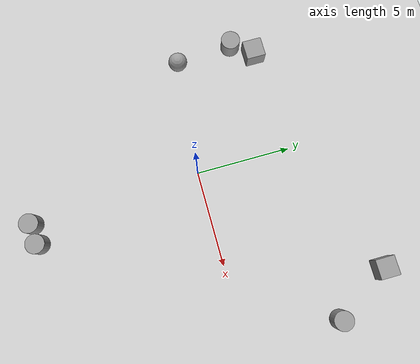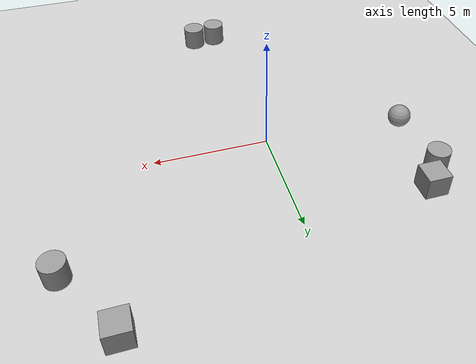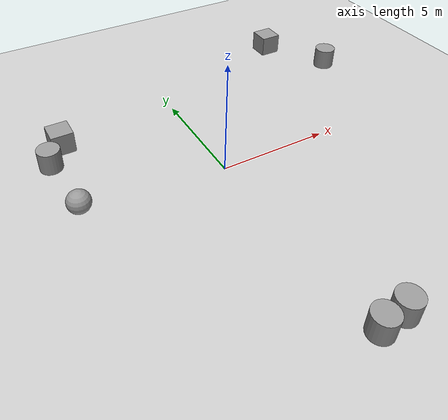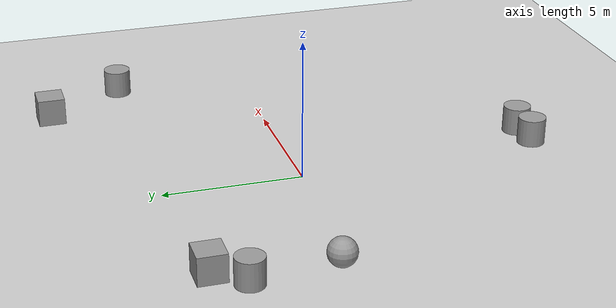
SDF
<sdf version="1.7">
 <world name="default">
  <light name="sun" type="directional">
   <pose>0 0 10 0 -0 0</pose>
   <diffuse>0.8 0.8 0.8 1</diffuse>
   <specular>0.2 0.2 0.2 1</specular>
   <attenuation>
    <range>1000</range>
    <constant>0.9</constant>
    <linear>0.01</linear>
    <quadratic>0.001</quadratic>
   </attenuation>
   <direction>-0.5 0.1 -0.9</direction>
   <spot><inner_angle>0</inner_angle><outer_angle>0</outer_angle><falloff>0</falloff></spot>
  </light>
  <model name="ground_plane">
   <static>1</static>
   <link name="link">
    <collision name="collision">
     <geometry><plane><normal>0 0 1</normal><size>100 100</size></plane></geometry>
     <surface><friction><ode><mu>100</mu><mu2>50</mu2></ode></friction></surface>
    </collision>
    <visual name="visual">
     <cast_shadows>0</cast_shadows>
     <geometry><plane><normal>0 0 1</normal><size>100 100</size></plane></geometry>
     <material>
      <script><uri>file://media/materials/scripts/gazebo.material</uri><name>Gazebo/Grey</name></script>
     </material>
    </visual>
   </link>
  </model>
  <gravity>0 0 -9.8</gravity>
  <magnetic_field>6e-06 2.3e-05 -4.2e-05</magnetic_field>
  <atmosphere type="adiabatic"/>
  <physics type="ode">
   <max_step_size>0.001</max_step_size>
   <real_time_factor>1</real_time_factor>
   <real_time_update_rate>1000</real_time_update_rate>
  </physics>
  <scene><ambient>0.4 0.4 0.4 1</ambient><background>0.7 0.7 0.7 1</background><shadows>1</shadows></scene>
  <spherical_coordinates>
   <surface_model>EARTH_WGS84</surface_model>
   <latitude_deg>0</latitude_deg>
   <longitude_deg>0</longitude_deg>
   <elevation>0</elevation>
   <heading_deg>0</heading_deg>
  </spherical_coordinates>
  <model name="unit_box">
   <pose>-5.56853 4.66268 0.5 0 -0 0</pose>
   <link name="link">
    <inertial>
     <mass>1</mass>
     <inertia>
      <ixx>0.166667</ixx>
      <ixy>0</ixy>
      <ixz>0</ixz>
      <iyy>0.166667</iyy>
      <iyz>0</iyz>
      <izz>0.166667</izz>
     </inertia>
    </inertial>
    <collision name="collision"><geometry><box><size>1 1 1</size></box></geometry></collision>
    <visual name="visual">
     <geometry><box><size>1 1 1</size></box></geometry>
     <material>
      <script><name>Gazebo/Grey</name><uri>file://media/materials/scripts/gazebo.material</uri></script>
     </material>
    </visual>
   </link>
  </model>
  <model name="unit_cylinder">
   <pose>-6.35113 3.58978 0.499992 -3e-06 -4e-06 -0</pose>
   <link name="link">
    <inertial>
     <mass>1</mass>
     <inertia><ixx>0.145833</ixx><ixy>0</ixy><ixz>0</ixz><iyy>0.145833</iyy><iyz>0</iyz><izz>0.125</izz></inertia>
    </inertial>
    <collision name="collision">
     <geometry><cylinder><radius>0.5</radius><length>1</length></cylinder></geometry>
    </collision>
    <visual name="visual">
     <geometry><cylinder><radius>0.5</radius><length>1</length></cylinder></geometry>
     <material>
      <script><name>Gazebo/Grey</name><uri>file://media/materials/scripts/gazebo.material</uri></script>
     </material>
    </visual>
   </link>
  </model>
  <model name="unit_sphere">
   <pose>-6.10384 0.576536 0.5 0 -0 0</pose>
   <link name="link">
    <inertial>
     <mass>1</mass>
     <inertia><ixx>0.1</ixx><ixy>0</ixy><ixz>0</ixz><iyy>0.1</iyy><iyz>0</iyz><izz>0.1</izz></inertia>
    </inertial>
    <collision name="collision"><geometry><sphere><radius>0.5</radius></sphere></geometry></collision>
    <visual name="visual">
     <geometry><sphere><radius>0.5</radius></sphere></geometry>
     <material>
      <script><name>Gazebo/Grey</name><uri>file://media/materials/scripts/gazebo.material</uri></script>
     </material>
    </visual>
   </link>
  </model>
  <model name="unit_box_0">
   <pose>7.23544 7.75765 0.5 -0 -0 -0</pose>
   <link name="link">
    <inertial>
     <mass>1</mass>
     <inertia>
      <ixx>0.166667</ixx>
      <ixy>0</ixy>
      <ixz>0</ixz>
      <iyy>0.166667</iyy>
      <iyz>0</iyz>
      <izz>0.166667</izz>
     </inertia>
    </inertial>
    <collision name="collision"><geometry><box><size>1 1 1</size></box></geometry></collision>
    <visual name="visual">
     <geometry><box><size>1 1 1</size></box></geometry>
     <material>
      <script><name>Gazebo/Grey</name><uri>file://media/materials/scripts/gazebo.material</uri></script>
     </material>
    </visual>
   </link>
  </model>
  <model name="unit_cylinder_0">
   <pose>9.08523 4.87687 0.499993 -3e-06 -4e-06 -0</pose>
   <link name="link">
    <inertial>
     <mass>1</mass>
     <inertia><ixx>0.145833</ixx><ixy>0</ixy><ixz>0</ixz><iyy>0.145833</iyy><iyz>0</iyz><izz>0.125</izz></inertia>
    </inertial>
    <collision name="collision">
     <geometry><cylinder><radius>0.5</radius><length>1</length></cylinder></geometry>
    </collision>
    <visual name="visual">
     <geometry><cylinder><radius>0.5</radius><length>1</length></cylinder></geometry>
     <material>
      <script><name>Gazebo/Grey</name><uri>file://media/materials/scripts/gazebo.material</uri></script>
     </material>
    </visual>
   </link>
  </model>
  <model name="unit_cylinder_1">
   <pose>0.338621 -8.87769 0.499997 3e-06 4e-06 -0</pose>
   <link name="link">
    <inertial>
     <mass>1</mass>
     <inertia><ixx>0.145833</ixx><ixy>0</ixy><ixz>0</ixz><iyy>0.145833</iyy><iyz>0</iyz><izz>0.125</izz></inertia>
    </inertial>
    <collision name="collision">
     <geometry><cylinder><radius>0.5</radius><length>1</length></cylinder></geometry>
    </collision>
    <visual name="visual">
     <geometry><cylinder><radius>0.5</radius><length>1</length></cylinder></geometry>
     <material>
      <script><name>Gazebo/Grey</name><uri>file://media/materials/scripts/gazebo.material</uri></script>
     </material>
    </visual>
   </link>
  </model>
  <model name="unit_cylinder_2">
   <pose>1.42118 -8.78458 0.499993 -3e-06 -4e-06 -0</pose>
   <link name="link">
    <inertial>
     <mass>1</mass>
     <inertia><ixx>0.145833</ixx><ixy>0</ixy><ixz>0</ixz><iyy>0.145833</iyy><iyz>0</iyz><izz>0.125</izz></inertia>
    </inertial>
    <collision name="collision">
     <geometry><cylinder><radius>0.5</radius><length>1</length></cylinder></geometry>
    </collision>
    <visual name="visual">
     <geometry><cylinder><radius>0.5</radius><length>1</length></cylinder></geometry>
     <material>
      <script><name>Gazebo/Grey</name><uri>file://media/materials/scripts/gazebo.material</uri></script>
     </material>
    </visual>
   </link>
  </model>
 </world>
</sdf>
